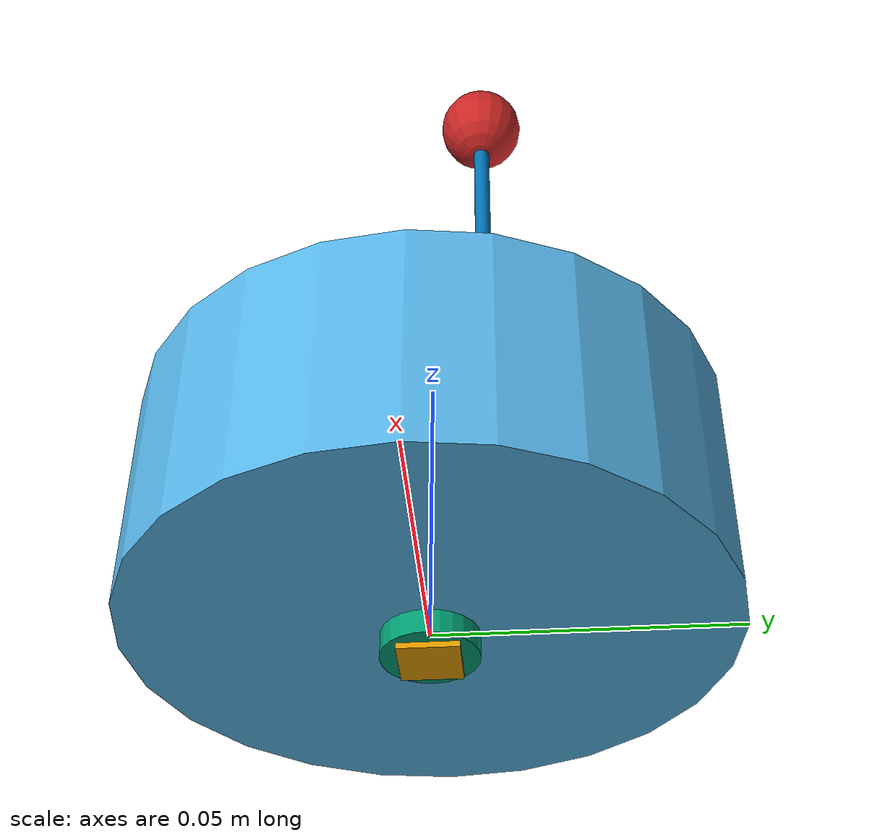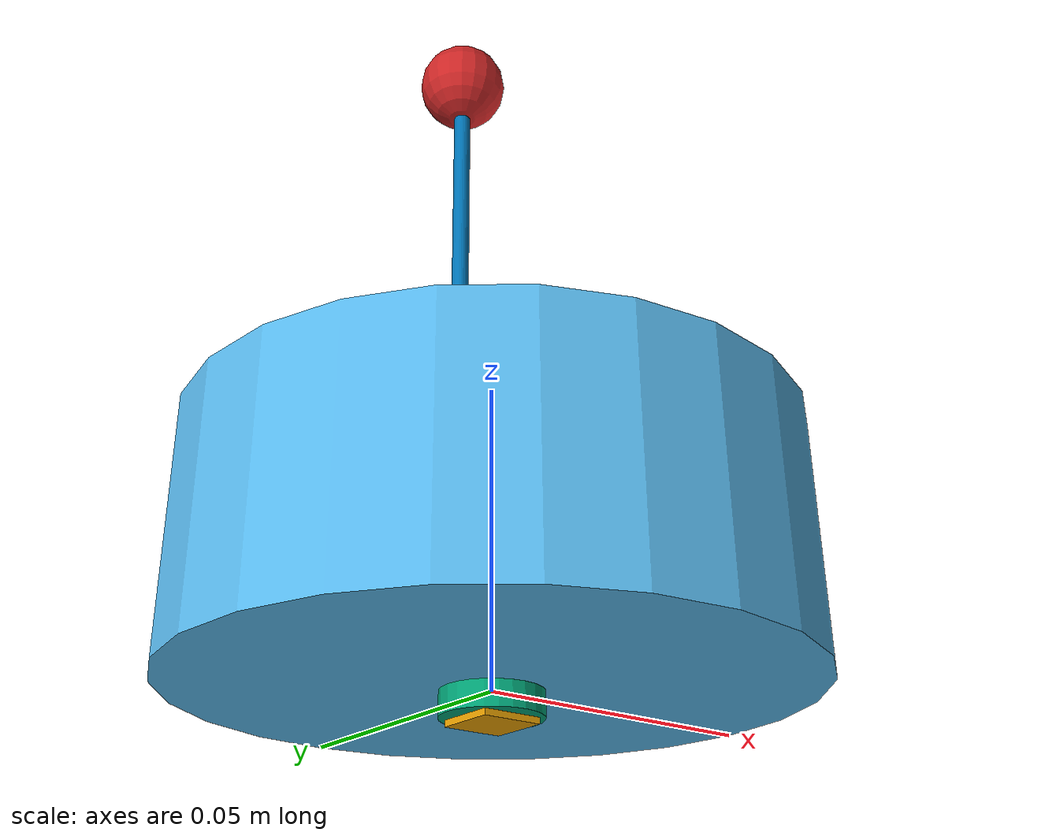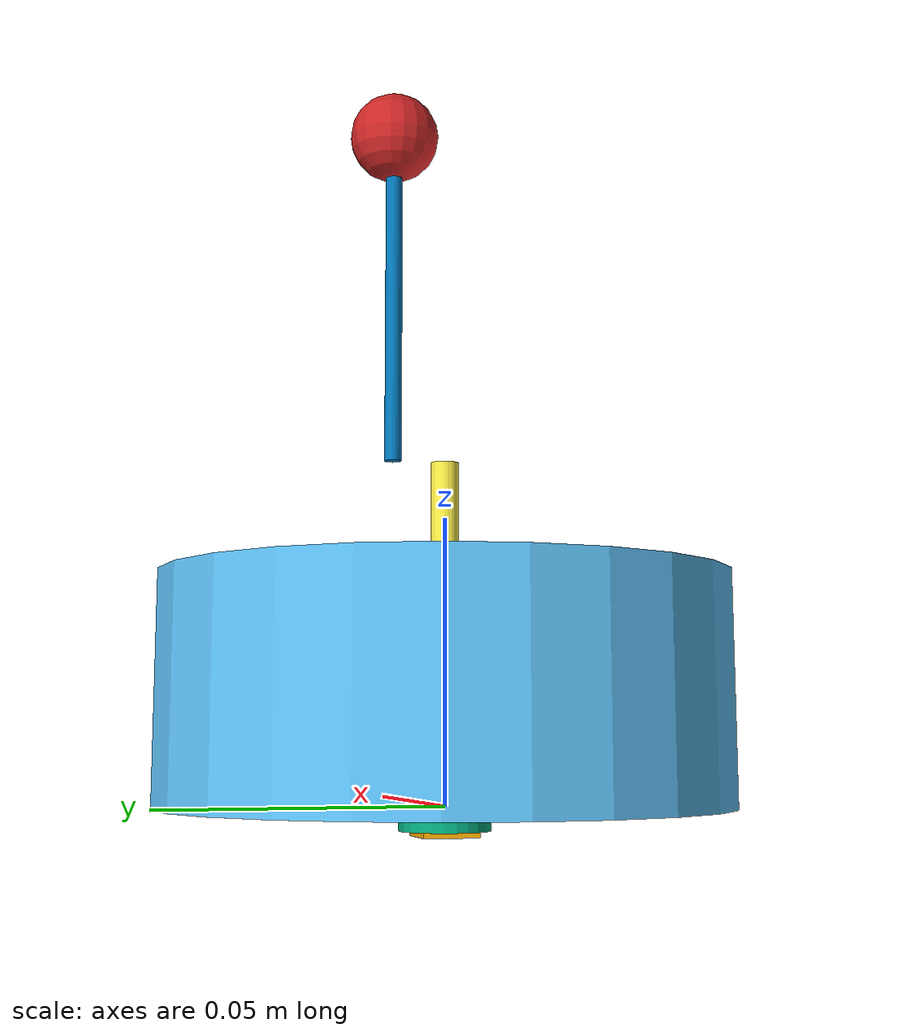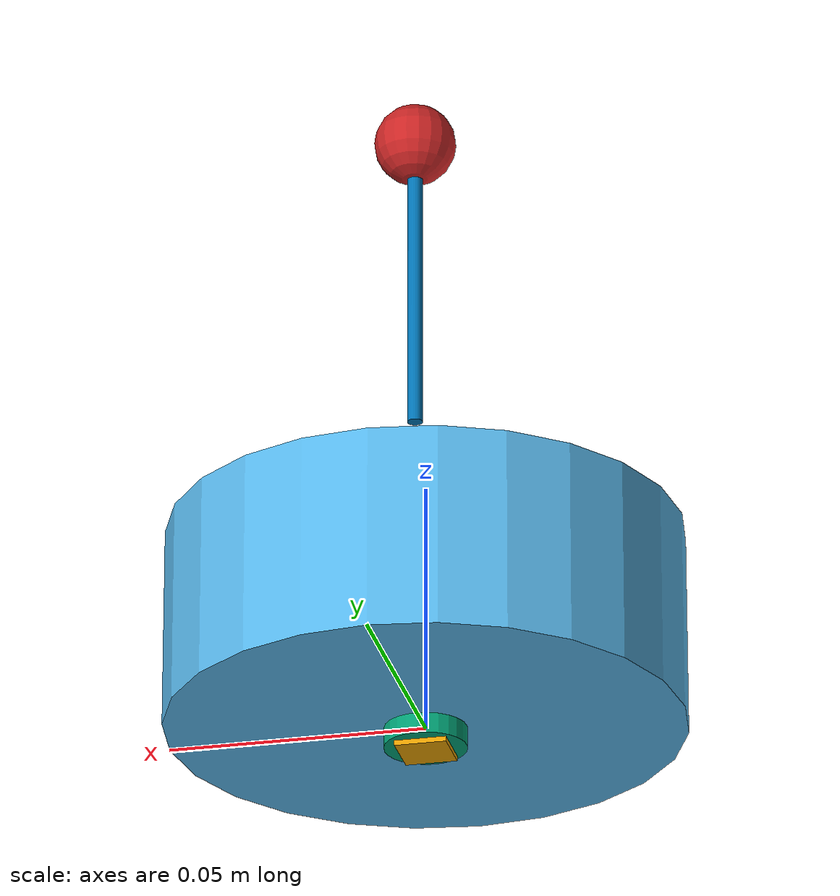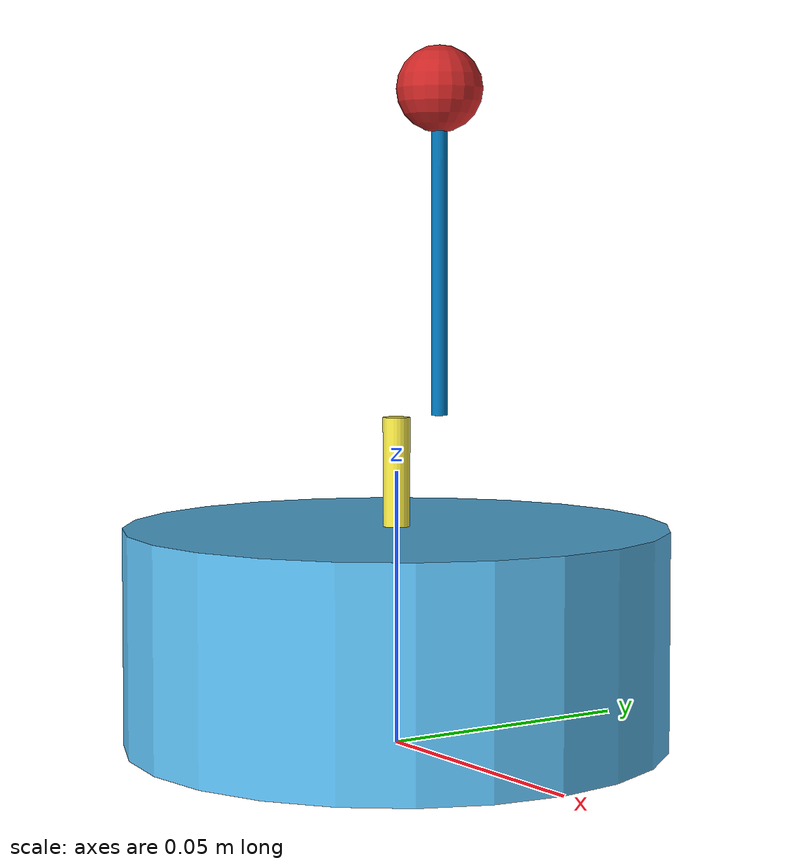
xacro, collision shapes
<?xml version="1.0"?>
<robot xmlns:xacro="http://www.ros.org/wiki/xacro" name="gurdy">

<!-- define base_link and head_link -->

    <xacro:macro name="gurdy_head" params="">

        <link name="base_link">
            <collision>
                <origin xyz="0 0 0" rpy="0 0 0"/>
                <geometry>
                    <box size="0.01 0.01 0.01"/>
                </geometry>
            </collision>
            <visual>
                <origin xyz="0 0 0.01" rpy="0 0 0"/>
                <geometry>
                    <box size="0.01 0.01 0.01"/>
                </geometry>
            </visual>
        </link>

        <link name="head_link">
            <inertial>
                <origin xyz="0 0 0.02" rpy="0 0 0"/>
                <mass value="0.01" />
                <inertia ixx="7.58333333333e-07" ixy="0.0" ixz="0.0" iyy="7.58333333333e-07" iyz="0.0" izz="1.25e-06"/>
            </inertial>
            <collision>
                <origin xyz="0 0 0.02" rpy="0 0 0"/>
                <geometry>
                    <cylinder radius="0.05" length="0.04"/>
                </geometry>
            </collision>
            <visual>
                <origin rpy="0.0 0 0" xyz="0 0 0"/>
                <geometry>
                    <mesh filename="package://my_gurdy_description/models/gurdy/meshes/gurdy_head_v2.dae"/>
                </geometry>
            </visual>
        </link>

        <gazebo reference="head_link">
            <mu1>10.0</mu1>
            <mu2>10.0</mu2>
        </gazebo>

        <joint name="base_joint" type="fixed">
            <parent link="base_link"/>
            <child link="head_link"/>
            <origin xyz="0 0 0" rpy="0 -0 0"/>
        </joint>

    </xacro:macro>

<!-- define upperleg_yaw_link -->

    <xacro:macro name="upperleg_yaw_link" params="number">

        <link name="upperleg_M${number}_yaw_link">
            <inertial>
                <origin xyz="0 0 0" rpy="0 0 0"/>
                <mass value="0.01"/>
                <inertia ixx="2.13333e-07" ixy="0" ixz="0" iyy="2.13333e-07" iyz="0" izz="3.2e-07"/>
            </inertial>
            <collision>
                <origin rpy="0.0 0 0" xyz="0 0 0"/>
                <geometry>
                    <cylinder radius="0.008" length="0.008"/>
                </geometry>
            </collision>
            <visual>
                <origin rpy="0.0 0 0" xyz="0 0 0"/>
                <geometry>
                    <cylinder radius="0.008" length="0.008"/>
                </geometry>
            </visual>
        </link>

    </xacro:macro>

<!-- definition of yaw joint is in definition of gurdy_leg -->

<!-- define transmission of yaw joint -->

    <xacro:macro name="trans_yaw" params="number">

        <transmission name="tran_M${number}_head_upper_yaw">

            <type>transmission_interface/SimpleTransmission</type>
            <joint name="head_upperlegM${number}_yaw_joint">
                <hardwareInterface>hardware_interface/EffortJointInterface</hardwareInterface>
            </joint>
            <actuator name="motor_M${number}_head_upper_yaw">
                <hardwareInterface>hardware_interface/EffortJointInterface</hardwareInterface>
                <mechanicalReduction>1</mechanicalReduction>
            </actuator>

        </transmission>

    </xacro:macro>

<!-- define upperleg_link -->

    <xacro:macro name="upperleg_link" params="number">

        <link name="upperleg_M${number}_link">

            <inertial>
                <origin xyz="0 0 0.03" rpy="0 0 0"/>
                <mass value="0.01"/>
                <inertia ixx="3.015625e-06" ixy="0" ixz="0" iyy="3.015625e-06" iyz="0" izz="3.125e-08"/>
            </inertial>

            <collision>
                <origin rpy="0.0 0 0" xyz="0 0 0.03"/>
                <geometry>
                    <cylinder length="0.06" radius="0.0025"/>
                </geometry>
            </collision>

            <visual>
                <origin rpy="0.0 0 0" xyz="0 0 0"/>
                <geometry>
                    <mesh filename="package://my_gurdy_description/models/gurdy/meshes/gurdy_higherleg_v2.dae"/>
                </geometry>
            </visual>

        </link>

    </xacro:macro>

<!-- definition of upperleg joint is in definition of gurdy_leg -->

<!-- define transmission of upperleg joint -->

    <xacro:macro name="trans_upperleg" params="number">

        <transmission name="tran_M${number}_head_upper">

            <type>transmission_interface/SimpleTransmission</type>
            <joint name="head_upperlegM${number}_joint">
                <hardwareInterface>hardware_interface/EffortJointInterface</hardwareInterface>
            </joint>
            <actuator name="motor_M${number}_head_upper">
                <hardwareInterface>hardware_interface/EffortJointInterface</hardwareInterface>
                <mechanicalReduction>1</mechanicalReduction>
            </actuator>

        </transmission>

    </xacro:macro>

<!-- define lowerleg link -->

    <xacro:macro name="lowerleg_link" params="number">

        <link name="lowerleg_M${number}_link">

            <inertial>
                <origin xyz="0 0 0.03" rpy="0 0 0"/>
                <mass value="0.01"/>
                <inertia ixx="3.005625e-06" ixy="0" ixz="0" iyy="3.005625e-06" iyz="0" izz="1.125e-08"/>
            </inertial>

            <collision>
                <origin rpy="0 0 0" xyz="0 0 0.03"/>
                <geometry>
                    <cylinder length="0.06" radius="0.0015"/>
                </geometry>
            </collision>

            <visual>
                <origin rpy="0 0 0" xyz="0 0 0"/>
                <geometry>
                    <mesh filename="package://my_gurdy_description/models/gurdy/meshes/gurdy_lowerleg_v2.dae"/>
                </geometry>
            </visual>

        </link>

    </xacro:macro>

<!-- define lowerleg joint -->

    <xacro:macro name="lowerleg_joint" params="number">

        <joint name="upperleg_lowerleg_M${number}_joint" type="revolute">

            <parent link="upperleg_M${number}_link"/>
            <child link="lowerleg_M${number}_link"/>
            <origin xyz="0 0.0095 0.06" rpy="0 0 3.14159"/>
            <limit lower="-2.9" upper="1.57" effort="1.0" velocity="0.005"/>
            <axis xyz="0 1 0"/>

        </joint>

        <transmission name="tran_M${number}_upper_lower">

            <type>transmission_interface/SimpleTransmission</type>
            <joint name="upperleg_lowerleg_M${number}_joint">
                <hardwareInterface>hardware_interface/EffortJointInterface</hardwareInterface>
            </joint>
            <actuator name="motor_M${number}_upper_lower">
                <hardwareInterface>hardware_interface/EffortJointInterface</hardwareInterface>
                <mechanicalReduction>1</mechanicalReduction>
            </actuator>

        </transmission>

    </xacro:macro>

<!-- define foot link -->

    <xacro:macro name="foot_link" params="number color">

        <link name="foot_M${number}_link">

            <inertial>
                <origin xyz="0 0 0" rpy="0 0 0"/>
                <mass value="0.01"/>
                <inertia ixx="2.56e-07" ixy="0" ixz="0" iyy="2.56e-07" iyz="0" izz="2.56e-07"/>
            </inertial>

            <collision>
                <origin rpy="0 0 0" xyz="0 0 0"/>
                <geometry>
                    <sphere radius="0.008"/>
                </geometry>
            </collision>

            <visual>
                <origin rpy="0 0 0" xyz="0 0 0"/>
                <geometry>
                    <sphere radius="0.008"/>
                </geometry>
            </visual>

        </link>

        <gazebo reference="foot_M${number}_link">

            <kp>1000.0</kp>
            <kd>1000.0</kd>
            <mu1>10.0</mu1>
            <mu2>10.0</mu2>
            <material>Gazebo/${color}</material>

        </gazebo>

        <joint name="foot_lowerleg_M${number}_joint" type="fixed">

            <parent link="lowerleg_M${number}_link"/>
            <child link="foot_M${number}_link"/>
            <origin xyz="0 0 0.06" rpy="0 0 0"/>

        </joint>

    </xacro:macro>

<!-- define gurdy_leg -->

    <xacro:macro name="gurdy_leg" params="head_link_name Number Color *origin1 *origin2">
    <!-- *upperleg_joint_origin -->

        <!-- apply yaw link -->
        <xacro:upperleg_yaw_link number="${Number}"/>

        <!-- define yaw joint -->
        <joint name="head_upperlegM${Number}_yaw_joint" type="revolute">
            <parent link="${head_link_name}"/>
            <child link="upperleg_M${Number}_yaw_link"/>
            <!-- origins of yaw joints are different, so here to individually define, as an insert_block -->
            <xacro:insert_block name="origin1"/>
            <limit lower="-0.7" upper="0.7" effort="1.0" velocity="0.005"/>
            <axis xyz="0 0 1"/>
        </joint>

        <!-- apply transmission of yaw joint -->
        <xacro:trans_yaw number="${Number}"/>

        <!-- apply upperleg link -->
        <xacro:upperleg_link number="${Number}"/>

        <!-- define upperleg joint -->
        <joint name="head_upperlegM${Number}_joint" type="revolute">
            <parent link="upperleg_M${Number}_yaw_link"/>
            <child link="upperleg_M${Number}_link"/>
            <xacro:insert_block name="origin2"/>
            <limit lower="-1.55" upper="0" effort="1.0" velocity="0.005"/>
            <axis xyz="0 1 0"/>
        </joint>

        <!-- apply transmission of upperleg joint -->
        <xacro:trans_upperleg number="${Number}"/>

        <!-- apply lowerleg link -->
        <xacro:lowerleg_link number="${Number}"/>

        <!-- apply lowerleg joint -->
        <xacro:lowerleg_joint number="${Number}"/>

        <!-- apply foot link -->
        <xacro:foot_link number="${Number}" color="${Color}"/>

    </xacro:macro>

<!-- define control system -->

    <xacro:macro name="control_system" params="namespace">

        <gazebo>
            <plugin name="gazebo_ros_control" filename="libgazebo_ros_control.so">
                <robotNamespace>/${namespace}</robotNamespace>
            </plugin>
        </gazebo>

        <gazebo>

            <plugin name="gazebo_ros_imu_controller" filename="libgazebo_ros_imu.so">
            <robotNamespace>/${namespace}</robotNamespace>
            <topicName>imu/data</topicName>
            <serviceName>imu/service</serviceName>
            <bodyName>base_link</bodyName>
            <gaussianNoise>0</gaussianNoise>
            <rpyOffsets>0 0 0</rpyOffsets>
            <updateRate>10.0</updateRate>
            <alwaysOn>true</alwaysOn>
            <gaussianNoise>0</gaussianNoise>
            </plugin>

        </gazebo>

    </xacro:macro>

<!-- apply to integrity -->

<!-- apply base_link and head_link -->

    <xacro:gurdy_head />

<!-- apply gurdy_leg -->

<!-- 1st leg: with yaw link&joint, upperleg link&joint, lowerleg link&joint -->

    <xacro:gurdy_leg head_link_name="head_link" Number="1" Color="Red">

        <origin1>
            <origin xyz="-0.02165 -0.0125 -0.008" rpy="0 0 0"/>
        </origin1>

        <origin2>
            <origin xyz="0 0 0" rpy="3.14159 0 0.523599"/>
        </origin2>

    </xacro:gurdy_leg>

<!-- 2nd leg: with yaw link&joint, upperleg link&joint, lowerleg link&joint -->

<!-- 3rd leg: with yaw link&joint, upperleg link&joint, lowerleg link&joint -->

<!-- apply control system -->

    <xacro:control_system namespace="gurdy"/>

</robot>
